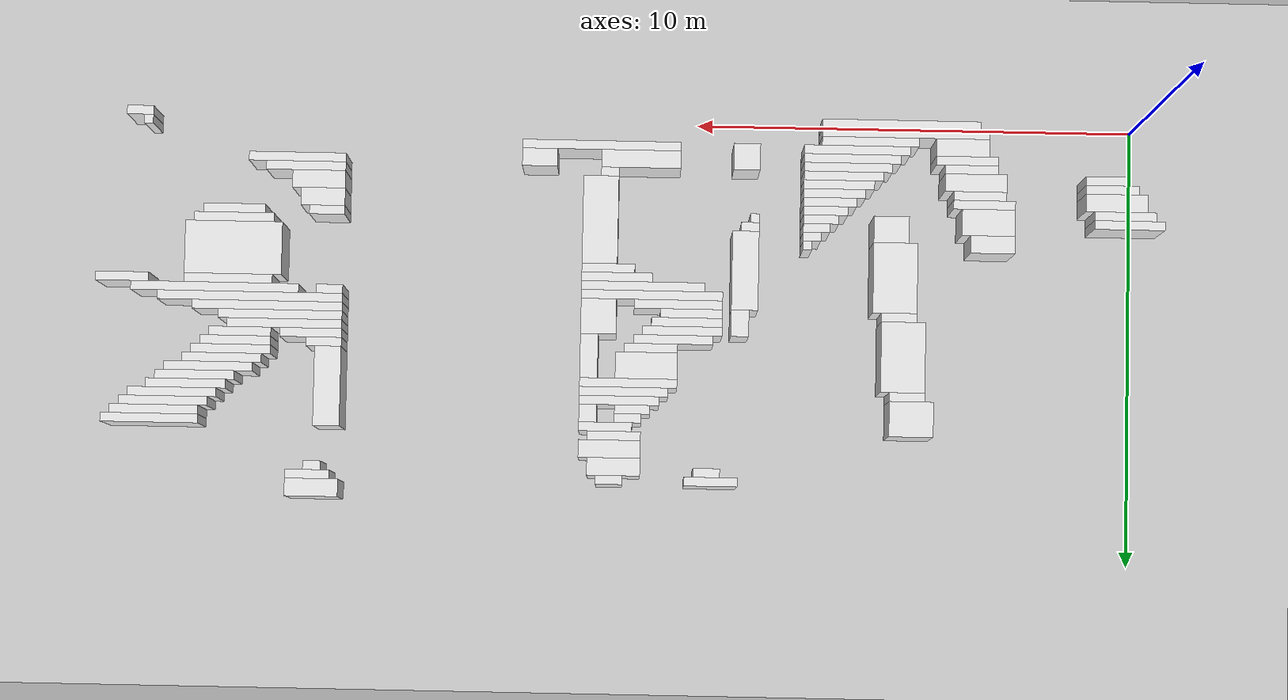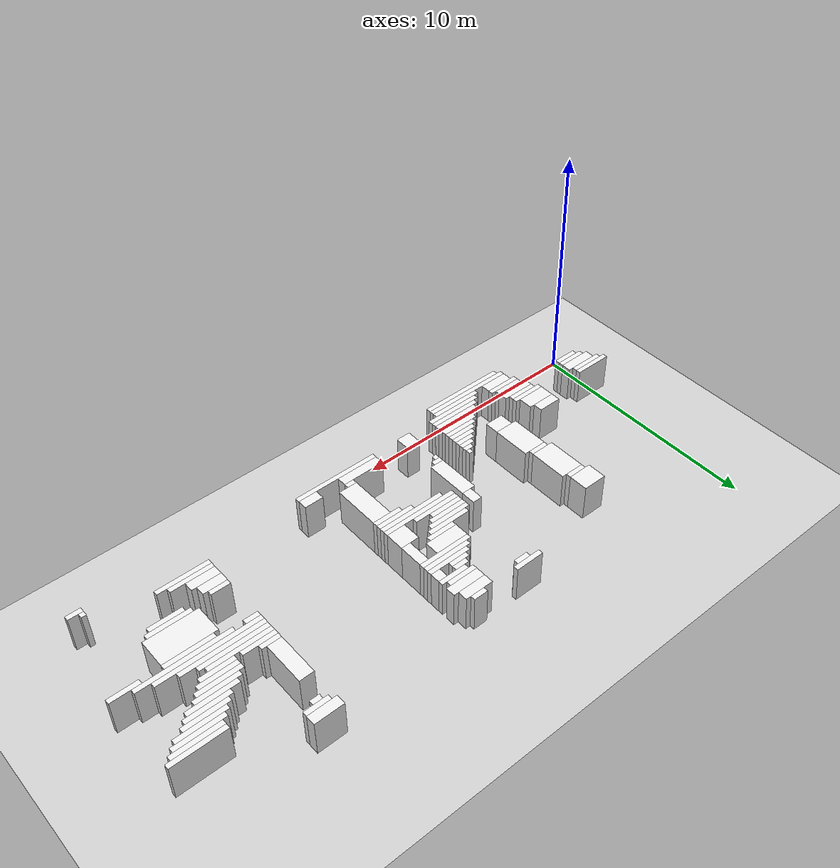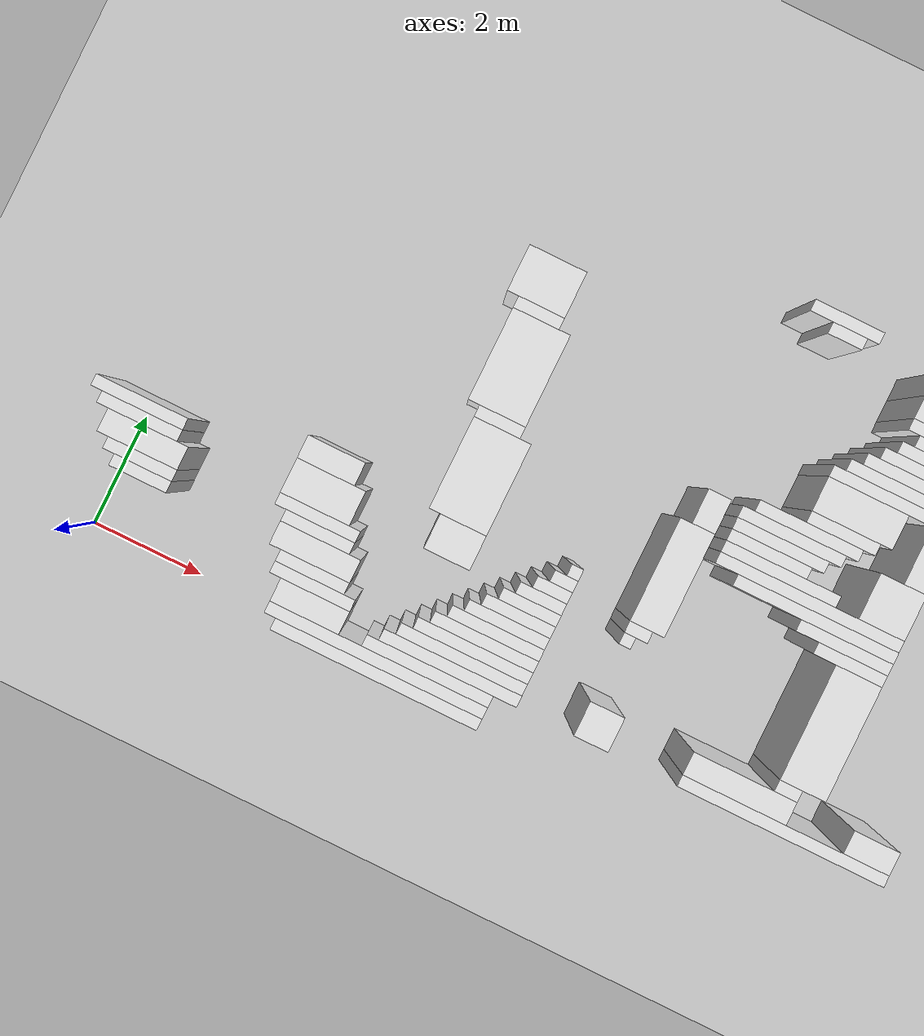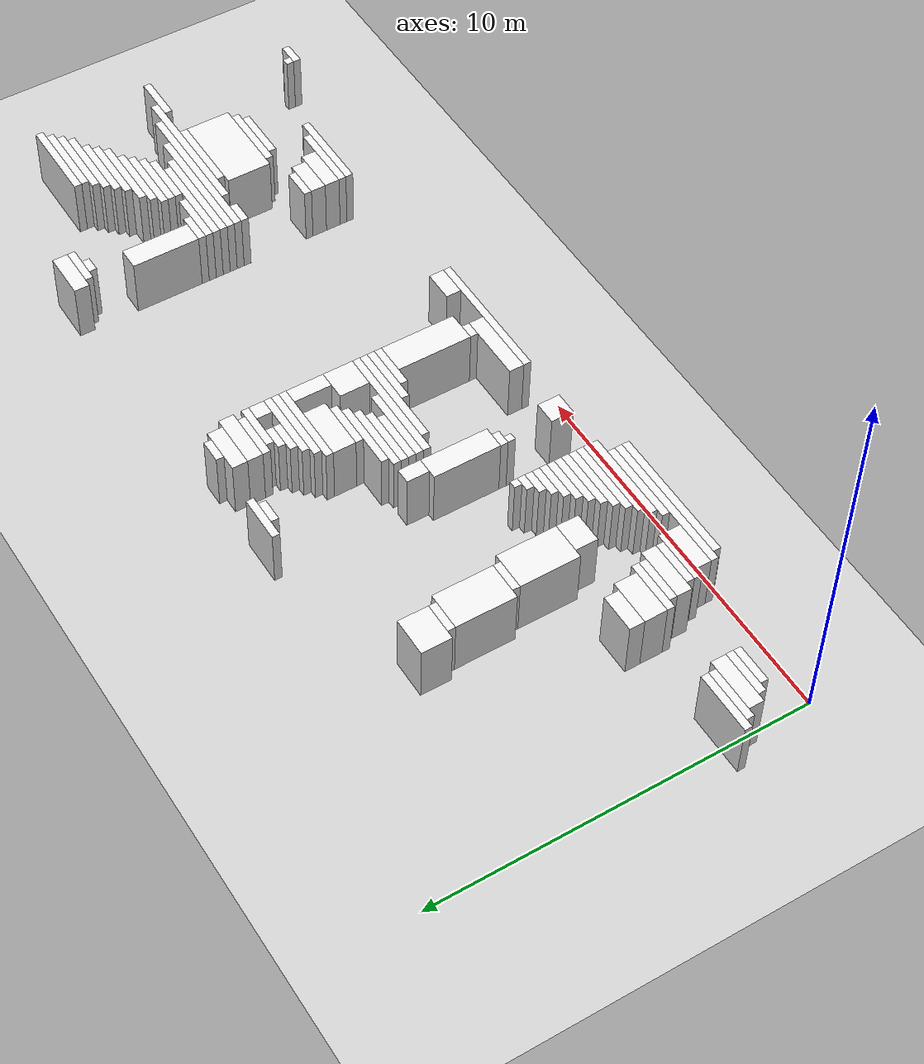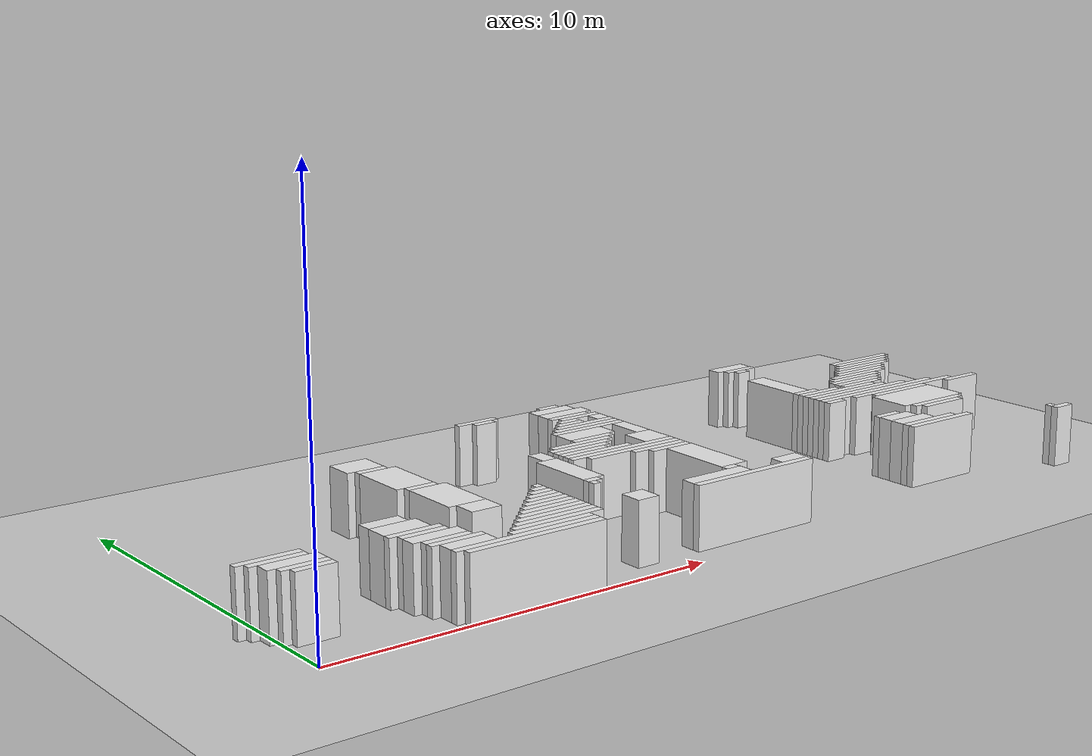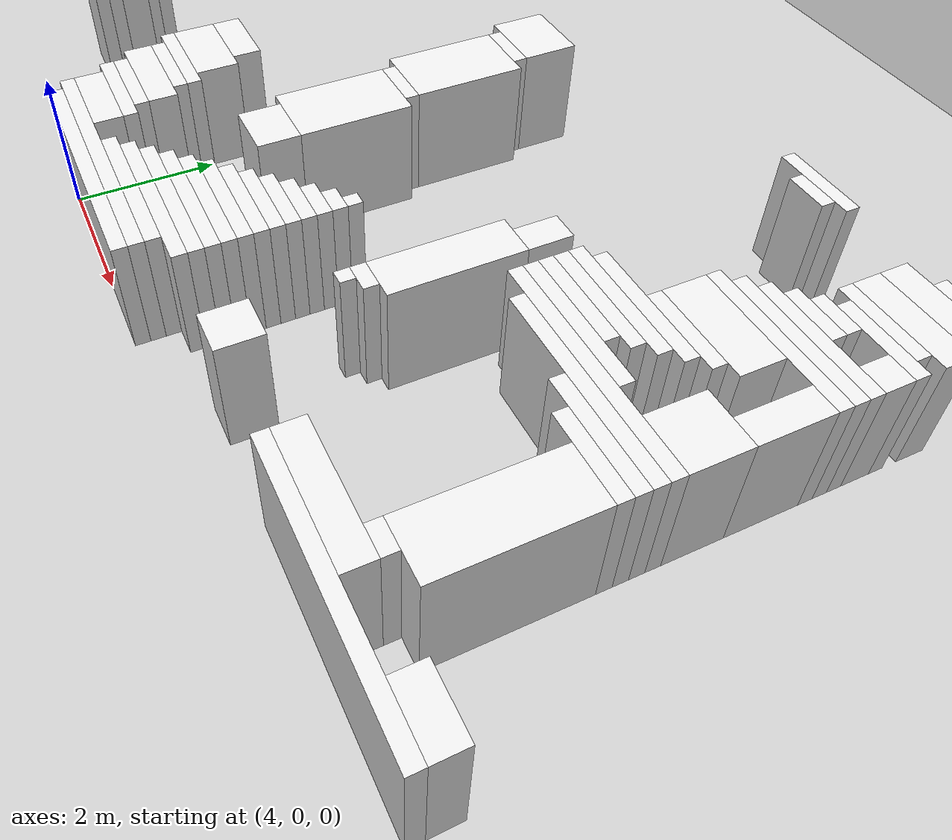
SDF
<sdf version="1.7">
 <world name="default">
  <model name="ground_plane">
   <static>1</static>
   <link name="link">
    <collision name="collision">
     <geometry><plane><normal>0 0 1</normal><size>120 120</size></plane></geometry>
    </collision>
    <visual name="visual">
     <geometry><plane><normal>0 0 1</normal><size>120 120</size></plane></geometry>
     <material>
      <script><uri>file://media/materials/scripts/gazebo.material</uri><name>Gazebo/Grey</name></script>
     </material>
    </visual>
   </link>
  </model>
  <model name="random_complex_02_model">
   <static>1</static>
   <link name="obs_1605">
    <pose>18.6000 8.6000 0.8000 0 0 0</pose>
    <collision name="obs_1605_col"><geometry><box><size>1.2000 0.4000 1.6000</size></box></geometry></collision>
    <visual name="obs_1605_vis">
     <geometry><box><size>1.2000 0.4000 1.6000</size></box></geometry>
     <material>
      <script><uri>file://media/materials/scripts/gazebo.material</uri><name>Gazebo/White</name></script>
     </material>
    </visual>
   </link>
   <link name="obs_1616">
    <pose>9.6000 8.3000 0.8000 0 0 0</pose>
    <collision name="obs_1616_col"><geometry><box><size>1.2000 0.2000 1.6000</size></box></geometry></collision>
    <visual name="obs_1616_vis">
     <geometry><box><size>1.2000 0.2000 1.6000</size></box></geometry>
     <material>
      <script><uri>file://media/materials/scripts/gazebo.material</uri><name>Gazebo/White</name></script>
     </material>
    </visual>
   </link>
   <link name="obs_1617">
    <pose>11.9000 8.3000 0.8000 0 0 0</pose>
    <collision name="obs_1617_col"><geometry><box><size>0.6000 0.2000 1.6000</size></box></geometry></collision>
    <visual name="obs_1617_vis">
     <geometry><box><size>0.6000 0.2000 1.6000</size></box></geometry>
     <material>
      <script><uri>file://media/materials/scripts/gazebo.material</uri><name>Gazebo/White</name></script>
     </material>
    </visual>
   </link>
   <link name="obs_1618">
    <pose>18.7000 8.3000 0.8000 0 0 0</pose>
    <collision name="obs_1618_col"><geometry><box><size>1.0000 0.2000 1.6000</size></box></geometry></collision>
    <visual name="obs_1618_vis">
     <geometry><box><size>1.0000 0.2000 1.6000</size></box></geometry>
     <material>
      <script><uri>file://media/materials/scripts/gazebo.material</uri><name>Gazebo/White</name></script>
     </material>
    </visual>
   </link>
   <link name="obs_1627">
    <pose>9.7000 8.1000 0.8000 0 0 0</pose>
    <collision name="obs_1627_col"><geometry><box><size>0.6000 0.2000 1.6000</size></box></geometry></collision>
    <visual name="obs_1627_vis">
     <geometry><box><size>0.6000 0.2000 1.6000</size></box></geometry>
     <material>
      <script><uri>file://media/materials/scripts/gazebo.material</uri><name>Gazebo/White</name></script>
     </material>
    </visual>
   </link>
   <link name="obs_1628">
    <pose>18.6000 8.1000 0.8000 0 0 0</pose>
    <collision name="obs_1628_col"><geometry><box><size>0.4000 0.2000 1.6000</size></box></geometry></collision>
    <visual name="obs_1628_vis">
     <geometry><box><size>0.4000 0.2000 1.6000</size></box></geometry>
     <material>
      <script><uri>file://media/materials/scripts/gazebo.material</uri><name>Gazebo/White</name></script>
     </material>
    </visual>
   </link>
   <link name="obs_1633">
    <pose>11.8000 8.0000 0.8000 0 0 0</pose>
    <collision name="obs_1633_col"><geometry><box><size>1.2000 0.4000 1.6000</size></box></geometry></collision>
    <visual name="obs_1633_vis">
     <geometry><box><size>1.2000 0.4000 1.6000</size></box></geometry>
     <material>
      <script><uri>file://media/materials/scripts/gazebo.material</uri><name>Gazebo/White</name></script>
     </material>
    </visual>
   </link>
   <link name="obs_1646">
    <pose>11.9000 7.6000 0.8000 0 0 0</pose>
    <collision name="obs_1646_col"><geometry><box><size>1.4000 0.4000 1.6000</size></box></geometry></collision>
    <visual name="obs_1646_vis">
     <geometry><box><size>1.4000 0.4000 1.6000</size></box></geometry>
     <material>
      <script><uri>file://media/materials/scripts/gazebo.material</uri><name>Gazebo/White</name></script>
     </material>
    </visual>
   </link>
   <link name="obs_1654">
    <pose>11.8000 7.3000 0.8000 0 0 0</pose>
    <collision name="obs_1654_col"><geometry><box><size>1.2000 0.2000 1.6000</size></box></geometry></collision>
    <visual name="obs_1654_vis">
     <geometry><box><size>1.2000 0.2000 1.6000</size></box></geometry>
     <material>
      <script><uri>file://media/materials/scripts/gazebo.material</uri><name>Gazebo/White</name></script>
     </material>
    </visual>
   </link>
   <link name="obs_1658">
    <pose>12.0000 7.1000 0.8000 0 0 0</pose>
    <collision name="obs_1658_col"><geometry><box><size>1.2000 0.2000 1.6000</size></box></geometry></collision>
    <visual name="obs_1658_vis">
     <geometry><box><size>1.2000 0.2000 1.6000</size></box></geometry>
     <material>
      <script><uri>file://media/materials/scripts/gazebo.material</uri><name>Gazebo/White</name></script>
     </material>
    </visual>
   </link>
   <link name="obs_1659">
    <pose>22.3000 7.1000 0.8000 0 0 0</pose>
    <collision name="obs_1659_col"><geometry><box><size>2.2000 0.2000 1.6000</size></box></geometry></collision>
    <visual name="obs_1659_vis">
     <geometry><box><size>2.2000 0.2000 1.6000</size></box></geometry>
     <material>
      <script><uri>file://media/materials/scripts/gazebo.material</uri><name>Gazebo/White</name></script>
     </material>
    </visual>
   </link>
   <link name="obs_1665">
    <pose>11.5000 6.9000 0.8000 0 0 0</pose>
    <collision name="obs_1665_col"><geometry><box><size>0.6000 0.2000 1.6000</size></box></geometry></collision>
    <visual name="obs_1665_vis">
     <geometry><box><size>0.6000 0.2000 1.6000</size></box></geometry>
     <material>
      <script><uri>file://media/materials/scripts/gazebo.material</uri><name>Gazebo/White</name></script>
     </material>
    </visual>
   </link>
   <link name="obs_1666">
    <pose>22.2000 6.9000 0.8000 0 0 0</pose>
    <collision name="obs_1666_col"><geometry><box><size>2.0000 0.2000 1.6000</size></box></geometry></collision>
    <visual name="obs_1666_vis">
     <geometry><box><size>2.0000 0.2000 1.6000</size></box></geometry>
     <material>
      <script><uri>file://media/materials/scripts/gazebo.material</uri><name>Gazebo/White</name></script>
     </material>
    </visual>
   </link>
   <link name="obs_1668">
    <pose>12.4000 6.8000 0.8000 0 0 0</pose>
    <collision name="obs_1668_col"><geometry><box><size>0.4000 0.4000 1.6000</size></box></geometry></collision>
    <visual name="obs_1668_vis">
     <geometry><box><size>0.4000 0.4000 1.6000</size></box></geometry>
     <material>
      <script><uri>file://media/materials/scripts/gazebo.material</uri><name>Gazebo/White</name></script>
     </material>
    </visual>
   </link>
   <link name="obs_1673">
    <pose>11.4000 6.7000 0.8000 0 0 0</pose>
    <collision name="obs_1673_col"><geometry><box><size>0.8000 0.2000 1.6000</size></box></geometry></collision>
    <visual name="obs_1673_vis">
     <geometry><box><size>0.8000 0.2000 1.6000</size></box></geometry>
     <material>
      <script><uri>file://media/materials/scripts/gazebo.material</uri><name>Gazebo/White</name></script>
     </material>
    </visual>
   </link>
   <link name="obs_1674">
    <pose>22.0000 6.7000 0.8000 0 0 0</pose>
    <collision name="obs_1674_col"><geometry><box><size>2.0000 0.2000 1.6000</size></box></geometry></collision>
    <visual name="obs_1674_vis">
     <geometry><box><size>2.0000 0.2000 1.6000</size></box></geometry>
     <material>
      <script><uri>file://media/materials/scripts/gazebo.material</uri><name>Gazebo/White</name></script>
     </material>
    </visual>
   </link>
   <link name="obs_1676">
    <pose>5.1000 6.8000 0.8000 0 0 0</pose>
    <collision name="obs_1676_col"><geometry><box><size>1.0000 0.8000 1.6000</size></box></geometry></collision>
    <visual name="obs_1676_vis">
     <geometry><box><size>1.0000 0.8000 1.6000</size></box></geometry>
     <material>
      <script><uri>file://media/materials/scripts/gazebo.material</uri><name>Gazebo/White</name></script>
     </material>
    </visual>
   </link>
   <link name="obs_1683">
    <pose>11.7000 6.5000 0.8000 0 0 0</pose>
    <collision name="obs_1683_col"><geometry><box><size>1.8000 0.2000 1.6000</size></box></geometry></collision>
    <visual name="obs_1683_vis">
     <geometry><box><size>1.8000 0.2000 1.6000</size></box></geometry>
     <material>
      <script><uri>file://media/materials/scripts/gazebo.material</uri><name>Gazebo/White</name></script>
     </material>
    </visual>
   </link>
   <link name="obs_1684">
    <pose>21.8000 6.5000 0.8000 0 0 0</pose>
    <collision name="obs_1684_col"><geometry><box><size>2.0000 0.2000 1.6000</size></box></geometry></collision>
    <visual name="obs_1684_vis">
     <geometry><box><size>2.0000 0.2000 1.6000</size></box></geometry>
     <material>
      <script><uri>file://media/materials/scripts/gazebo.material</uri><name>Gazebo/White</name></script>
     </material>
    </visual>
   </link>
   <link name="obs_1689">
    <pose>5.2000 6.3000 0.8000 0 0 0</pose>
    <collision name="obs_1689_col"><geometry><box><size>0.8000 0.2000 1.6000</size></box></geometry></collision>
    <visual name="obs_1689_vis">
     <geometry><box><size>0.8000 0.2000 1.6000</size></box></geometry>
     <material>
      <script><uri>file://media/materials/scripts/gazebo.material</uri><name>Gazebo/White</name></script>
     </material>
    </visual>
   </link>
   <link name="obs_1690">
    <pose>11.6000 6.3000 0.8000 0 0 0</pose>
    <collision name="obs_1690_col"><geometry><box><size>2.0000 0.2000 1.6000</size></box></geometry></collision>
    <visual name="obs_1690_vis">
     <geometry><box><size>2.0000 0.2000 1.6000</size></box></geometry>
     <material>
      <script><uri>file://media/materials/scripts/gazebo.material</uri><name>Gazebo/White</name></script>
     </material>
    </visual>
   </link>
   <link name="obs_1691">
    <pose>21.5000 6.3000 0.8000 0 0 0</pose>
    <collision name="obs_1691_col"><geometry><box><size>1.8000 0.2000 1.6000</size></box></geometry></collision>
    <visual name="obs_1691_vis">
     <geometry><box><size>1.8000 0.2000 1.6000</size></box></geometry>
     <material>
      <script><uri>file://media/materials/scripts/gazebo.material</uri><name>Gazebo/White</name></script>
     </material>
    </visual>
   </link>
   <link name="obs_1695">
    <pose>11.5000 6.1000 0.8000 0 0 0</pose>
    <collision name="obs_1695_col"><geometry><box><size>2.2000 0.2000 1.6000</size></box></geometry></collision>
    <visual name="obs_1695_vis">
     <geometry><box><size>2.2000 0.2000 1.6000</size></box></geometry>
     <material>
      <script><uri>file://media/materials/scripts/gazebo.material</uri><name>Gazebo/White</name></script>
     </material>
    </visual>
   </link>
   <link name="obs_1696">
    <pose>21.3000 6.1000 0.8000 0 0 0</pose>
    <collision name="obs_1696_col"><geometry><box><size>1.8000 0.2000 1.6000</size></box></geometry></collision>
    <visual name="obs_1696_vis">
     <geometry><box><size>1.8000 0.2000 1.6000</size></box></geometry>
     <material>
      <script><uri>file://media/materials/scripts/gazebo.material</uri><name>Gazebo/White</name></script>
     </material>
    </visual>
   </link>
   <link name="obs_1702">
    <pose>21.0000 5.9000 0.8000 0 0 0</pose>
    <collision name="obs_1702_col"><geometry><box><size>2.0000 0.2000 1.6000</size></box></geometry></collision>
    <visual name="obs_1702_vis">
     <geometry><box><size>2.0000 0.2000 1.6000</size></box></geometry>
     <material>
      <script><uri>file://media/materials/scripts/gazebo.material</uri><name>Gazebo/White</name></script>
     </material>
    </visual>
   </link>
   <link name="obs_1709">
    <pose>20.7000 5.7000 0.8000 0 0 0</pose>
    <collision name="obs_1709_col"><geometry><box><size>1.8000 0.2000 1.6000</size></box></geometry></collision>
    <visual name="obs_1709_vis">
     <geometry><box><size>1.8000 0.2000 1.6000</size></box></geometry>
     <material>
      <script><uri>file://media/materials/scripts/gazebo.material</uri><name>Gazebo/White</name></script>
     </material>
    </visual>
   </link>
   <link name="obs_1712">
    <pose>18.3000 6.3000 0.8000 0 0 0</pose>
    <collision name="obs_1712_col"><geometry><box><size>0.6000 1.8000 1.6000</size></box></geometry></collision>
    <visual name="obs_1712_vis">
     <geometry><box><size>0.6000 1.8000 1.6000</size></box></geometry>
     <material>
      <script><uri>file://media/materials/scripts/gazebo.material</uri><name>Gazebo/White</name></script>
     </material>
    </visual>
   </link>
   <link name="obs_1715">
    <pose>11.1000 5.7000 0.8000 0 0 0</pose>
    <collision name="obs_1715_col"><geometry><box><size>1.4000 0.6000 1.6000</size></box></geometry></collision>
    <visual name="obs_1715_vis">
     <geometry><box><size>1.4000 0.6000 1.6000</size></box></geometry>
     <material>
      <script><uri>file://media/materials/scripts/gazebo.material</uri><name>Gazebo/White</name></script>
     </material>
    </visual>
   </link>
   <link name="obs_1721">
    <pose>20.5000 5.5000 0.8000 0 0 0</pose>
    <collision name="obs_1721_col"><geometry><box><size>1.8000 0.2000 1.6000</size></box></geometry></collision>
    <visual name="obs_1721_vis">
     <geometry><box><size>1.8000 0.2000 1.6000</size></box></geometry>
     <material>
      <script><uri>file://media/materials/scripts/gazebo.material</uri><name>Gazebo/White</name></script>
     </material>
    </visual>
   </link>
   <link name="obs_1729">
    <pose>11.0000 5.3000 0.8000 0 0 0</pose>
    <collision name="obs_1729_col"><geometry><box><size>1.2000 0.2000 1.6000</size></box></geometry></collision>
    <visual name="obs_1729_vis">
     <geometry><box><size>1.2000 0.2000 1.6000</size></box></geometry>
     <material>
      <script><uri>file://media/materials/scripts/gazebo.material</uri><name>Gazebo/White</name></script>
     </material>
    </visual>
   </link>
   <link name="obs_1730">
    <pose>18.4000 5.3000 0.8000 0 0 0</pose>
    <collision name="obs_1730_col"><geometry><box><size>0.8000 0.2000 1.6000</size></box></geometry></collision>
    <visual name="obs_1730_vis">
     <geometry><box><size>0.8000 0.2000 1.6000</size></box></geometry>
     <material>
      <script><uri>file://media/materials/scripts/gazebo.material</uri><name>Gazebo/White</name></script>
     </material>
    </visual>
   </link>
   <link name="obs_1731">
    <pose>20.4000 5.3000 0.8000 0 0 0</pose>
    <collision name="obs_1731_col"><geometry><box><size>1.6000 0.2000 1.6000</size></box></geometry></collision>
    <visual name="obs_1731_vis">
     <geometry><box><size>1.6000 0.2000 1.6000</size></box></geometry>
     <material>
      <script><uri>file://media/materials/scripts/gazebo.material</uri><name>Gazebo/White</name></script>
     </material>
    </visual>
   </link>
   <link name="obs_1735">
    <pose>12.4000 5.5000 0.8000 0 0 0</pose>
    <collision name="obs_1735_col"><geometry><box><size>0.4000 1.0000 1.6000</size></box></geometry></collision>
    <visual name="obs_1735_vis">
     <geometry><box><size>0.4000 1.0000 1.6000</size></box></geometry>
     <material>
      <script><uri>file://media/materials/scripts/gazebo.material</uri><name>Gazebo/White</name></script>
     </material>
    </visual>
   </link>
   <link name="obs_1743">
    <pose>10.5000 5.1000 0.8000 0 0 0</pose>
    <collision name="obs_1743_col"><geometry><box><size>1.8000 0.2000 1.6000</size></box></geometry></collision>
    <visual name="obs_1743_vis">
     <geometry><box><size>1.8000 0.2000 1.6000</size></box></geometry>
     <material>
      <script><uri>file://media/materials/scripts/gazebo.material</uri><name>Gazebo/White</name></script>
     </material>
    </visual>
   </link>
   <link name="obs_1744">
    <pose>18.7000 5.1000 0.8000 0 0 0</pose>
    <collision name="obs_1744_col"><geometry><box><size>1.4000 0.2000 1.6000</size></box></geometry></collision>
    <visual name="obs_1744_vis">
     <geometry><box><size>1.4000 0.2000 1.6000</size></box></geometry>
     <material>
      <script><uri>file://media/materials/scripts/gazebo.material</uri><name>Gazebo/White</name></script>
     </material>
    </visual>
   </link>
   <link name="obs_1745">
    <pose>20.3000 5.1000 0.8000 0 0 0</pose>
    <collision name="obs_1745_col"><geometry><box><size>1.4000 0.2000 1.6000</size></box></geometry></collision>
    <visual name="obs_1745_vis">
     <geometry><box><size>1.4000 0.2000 1.6000</size></box></geometry>
     <material>
      <script><uri>file://media/materials/scripts/gazebo.material</uri><name>Gazebo/White</name></script>
     </material>
    </visual>
   </link>
   <link name="obs_1751">
    <pose>10.3000 4.9000 0.8000 0 0 0</pose>
    <collision name="obs_1751_col"><geometry><box><size>1.8000 0.2000 1.6000</size></box></geometry></collision>
    <visual name="obs_1751_vis">
     <geometry><box><size>1.8000 0.2000 1.6000</size></box></geometry>
     <material>
      <script><uri>file://media/materials/scripts/gazebo.material</uri><name>Gazebo/White</name></script>
     </material>
    </visual>
   </link>
   <link name="obs_1752">
    <pose>19.3000 4.9000 0.8000 0 0 0</pose>
    <collision name="obs_1752_col"><geometry><box><size>2.6000 0.2000 1.6000</size></box></geometry></collision>
    <visual name="obs_1752_vis">
     <geometry><box><size>2.6000 0.2000 1.6000</size></box></geometry>
     <material>
      <script><uri>file://media/materials/scripts/gazebo.material</uri><name>Gazebo/White</name></script>
     </material>
    </visual>
   </link>
   <link name="obs_1753">
    <pose>5.3000 5.4000 0.8000 0 0 0</pose>
    <collision name="obs_1753_col"><geometry><box><size>1.0000 1.6000 1.6000</size></box></geometry></collision>
    <visual name="obs_1753_vis">
     <geometry><box><size>1.0000 1.6000 1.6000</size></box></geometry>
     <material>
      <script><uri>file://media/materials/scripts/gazebo.material</uri><name>Gazebo/White</name></script>
     </material>
    </visual>
   </link>
   <link name="obs_1759">
    <pose>10.2000 4.7000 0.8000 0 0 0</pose>
    <collision name="obs_1759_col"><geometry><box><size>1.6000 0.2000 1.6000</size></box></geometry></collision>
    <visual name="obs_1759_vis">
     <geometry><box><size>1.6000 0.2000 1.6000</size></box></geometry>
     <material>
      <script><uri>file://media/materials/scripts/gazebo.material</uri><name>Gazebo/White</name></script>
     </material>
    </visual>
   </link>
   <link name="obs_1760">
    <pose>19.4000 4.7000 0.8000 0 0 0</pose>
    <collision name="obs_1760_col"><geometry><box><size>2.8000 0.2000 1.6000</size></box></geometry></collision>
    <visual name="obs_1760_vis">
     <geometry><box><size>2.8000 0.2000 1.6000</size></box></geometry>
     <material>
      <script><uri>file://media/materials/scripts/gazebo.material</uri><name>Gazebo/White</name></script>
     </material>
    </visual>
   </link>
   <link name="obs_1762">
    <pose>9.0000 4.7000 0.8000 0 0 0</pose>
    <collision name="obs_1762_col"><geometry><box><size>0.4000 0.6000 1.6000</size></box></geometry></collision>
    <visual name="obs_1762_vis">
     <geometry><box><size>0.4000 0.6000 1.6000</size></box></geometry>
     <material>
      <script><uri>file://media/materials/scripts/gazebo.material</uri><name>Gazebo/White</name></script>
     </material>
    </visual>
   </link>
   <link name="obs_1766">
    <pose>5.4000 4.5000 0.8000 0 0 0</pose>
    <collision name="obs_1766_col"><geometry><box><size>0.8000 0.2000 1.6000</size></box></geometry></collision>
    <visual name="obs_1766_vis">
     <geometry><box><size>0.8000 0.2000 1.6000</size></box></geometry>
     <material>
      <script><uri>file://media/materials/scripts/gazebo.material</uri><name>Gazebo/White</name></script>
     </material>
    </visual>
   </link>
   <link name="obs_1767">
    <pose>10.1000 4.5000 0.8000 0 0 0</pose>
    <collision name="obs_1767_col"><geometry><box><size>1.4000 0.2000 1.6000</size></box></geometry></collision>
    <visual name="obs_1767_vis">
     <geometry><box><size>1.4000 0.2000 1.6000</size></box></geometry>
     <material>
      <script><uri>file://media/materials/scripts/gazebo.material</uri><name>Gazebo/White</name></script>
     </material>
    </visual>
   </link>
   <link name="obs_1768">
    <pose>19.7000 4.5000 0.8000 0 0 0</pose>
    <collision name="obs_1768_col"><geometry><box><size>3.4000 0.2000 1.6000</size></box></geometry></collision>
    <visual name="obs_1768_vis">
     <geometry><box><size>3.4000 0.2000 1.6000</size></box></geometry>
     <material>
      <script><uri>file://media/materials/scripts/gazebo.material</uri><name>Gazebo/White</name></script>
     </material>
    </visual>
   </link>
   <link name="obs_1771">
    <pose>12.2000 4.6000 0.8000 0 0 0</pose>
    <collision name="obs_1771_col"><geometry><box><size>0.8000 0.8000 1.6000</size></box></geometry></collision>
    <visual name="obs_1771_vis">
     <geometry><box><size>0.8000 0.8000 1.6000</size></box></geometry>
     <material>
      <script><uri>file://media/materials/scripts/gazebo.material</uri><name>Gazebo/White</name></script>
     </material>
    </visual>
   </link>
   <link name="obs_1777">
    <pose>10.4000 4.3000 0.8000 0 0 0</pose>
    <collision name="obs_1777_col"><geometry><box><size>2.0000 0.2000 1.6000</size></box></geometry></collision>
    <visual name="obs_1777_vis">
     <geometry><box><size>2.0000 0.2000 1.6000</size></box></geometry>
     <material>
      <script><uri>file://media/materials/scripts/gazebo.material</uri><name>Gazebo/White</name></script>
     </material>
    </visual>
   </link>
   <link name="obs_1778">
    <pose>20.1000 4.3000 0.8000 0 0 0</pose>
    <collision name="obs_1778_col"><geometry><box><size>4.2000 0.2000 1.6000</size></box></geometry></collision>
    <visual name="obs_1778_vis">
     <geometry><box><size>4.2000 0.2000 1.6000</size></box></geometry>
     <material>
      <script><uri>file://media/materials/scripts/gazebo.material</uri><name>Gazebo/White</name></script>
     </material>
    </visual>
   </link>
   <link name="obs_1788">
    <pose>11.0000 4.1000 0.8000 0 0 0</pose>
    <collision name="obs_1788_col"><geometry><box><size>3.2000 0.2000 1.6000</size></box></geometry></collision>
    <visual name="obs_1788_vis">
     <geometry><box><size>3.2000 0.2000 1.6000</size></box></geometry>
     <material>
      <script><uri>file://media/materials/scripts/gazebo.material</uri><name>Gazebo/White</name></script>
     </material>
    </visual>
   </link>
   <link name="obs_1789">
    <pose>18.3000 4.1000 0.8000 0 0 0</pose>
    <collision name="obs_1789_col"><geometry><box><size>0.6000 0.2000 1.6000</size></box></geometry></collision>
    <visual name="obs_1789_vis">
     <geometry><box><size>0.6000 0.2000 1.6000</size></box></geometry>
     <material>
      <script><uri>file://media/materials/scripts/gazebo.material</uri><name>Gazebo/White</name></script>
     </material>
    </visual>
   </link>
   <link name="obs_1790">
    <pose>20.9000 4.1000 0.8000 0 0 0</pose>
    <collision name="obs_1790_col"><geometry><box><size>3.8000 0.2000 1.6000</size></box></geometry></collision>
    <visual name="obs_1790_vis">
     <geometry><box><size>3.8000 0.2000 1.6000</size></box></geometry>
     <material>
      <script><uri>file://media/materials/scripts/gazebo.material</uri><name>Gazebo/White</name></script>
     </material>
    </visual>
   </link>
   <link name="obs_1802">
    <pose>11.2000 3.9000 0.8000 0 0 0</pose>
    <collision name="obs_1802_col"><geometry><box><size>2.8000 0.2000 1.6000</size></box></geometry></collision>
    <visual name="obs_1802_vis">
     <geometry><box><size>2.8000 0.2000 1.6000</size></box></geometry>
     <material>
      <script><uri>file://media/materials/scripts/gazebo.material</uri><name>Gazebo/White</name></script>
     </material>
    </visual>
   </link>
   <link name="obs_1803">
    <pose>20.6000 3.9000 0.8000 0 0 0</pose>
    <collision name="obs_1803_col"><geometry><box><size>2.0000 0.2000 1.6000</size></box></geometry></collision>
    <visual name="obs_1803_vis">
     <geometry><box><size>2.0000 0.2000 1.6000</size></box></geometry>
     <material>
      <script><uri>file://media/materials/scripts/gazebo.material</uri><name>Gazebo/White</name></script>
     </material>
    </visual>
   </link>
   <link name="obs_1804">
    <pose>23.0000 3.9000 0.8000 0 0 0</pose>
    <collision name="obs_1804_col"><geometry><box><size>1.2000 0.2000 1.6000</size></box></geometry></collision>
    <visual name="obs_1804_vis">
     <geometry><box><size>1.2000 0.2000 1.6000</size></box></geometry>
     <material>
      <script><uri>file://media/materials/scripts/gazebo.material</uri><name>Gazebo/White</name></script>
     </material>
    </visual>
   </link>
   <link name="obs_1811">
    <pose>11.8000 3.7000 0.8000 0 0 0</pose>
    <collision name="obs_1811_col"><geometry><box><size>1.6000 0.2000 1.6000</size></box></geometry></collision>
    <visual name="obs_1811_vis">
     <geometry><box><size>1.6000 0.2000 1.6000</size></box></geometry>
     <material>
      <script><uri>file://media/materials/scripts/gazebo.material</uri><name>Gazebo/White</name></script>
     </material>
    </visual>
   </link>
   <link name="obs_1815">
    <pose>12.0000 3.5000 0.8000 0 0 0</pose>
    <collision name="obs_1815_col"><geometry><box><size>1.2000 0.2000 1.6000</size></box></geometry></collision>
    <visual name="obs_1815_vis">
     <geometry><box><size>1.2000 0.2000 1.6000</size></box></geometry>
     <material>
      <script><uri>file://media/materials/scripts/gazebo.material</uri><name>Gazebo/White</name></script>
     </material>
    </visual>
   </link>
   <link name="obs_1830">
    <pose>5.5000 3.6000 0.8000 0 0 0</pose>
    <collision name="obs_1830_col"><geometry><box><size>1.0000 1.6000 1.6000</size></box></geometry></collision>
    <visual name="obs_1830_vis">
     <geometry><box><size>1.0000 1.6000 1.6000</size></box></geometry>
     <material>
      <script><uri>file://media/materials/scripts/gazebo.material</uri><name>Gazebo/White</name></script>
     </material>
    </visual>
   </link>
   <link name="obs_1835">
    <pose>7.5000 2.9000 0.8000 0 0 0</pose>
    <collision name="obs_1835_col"><geometry><box><size>0.2000 0.2000 1.6000</size></box></geometry></collision>
    <visual name="obs_1835_vis">
     <geometry><box><size>0.2000 0.2000 1.6000</size></box></geometry>
     <material>
      <script><uri>file://media/materials/scripts/gazebo.material</uri><name>Gazebo/White</name></script>
     </material>
    </visual>
   </link>
   <link name="obs_1838">
    <pose>8.9000 3.5000 0.8000 0 0 0</pose>
    <collision name="obs_1838_col"><geometry><box><size>0.6000 1.8000 1.6000</size></box></geometry></collision>
    <visual name="obs_1838_vis">
     <geometry><box><size>0.6000 1.8000 1.6000</size></box></geometry>
     <material>
      <script><uri>file://media/materials/scripts/gazebo.material</uri><name>Gazebo/White</name></script>
     </material>
    </visual>
   </link>
   <link name="obs_1840">
    <pose>20.5000 3.2000 0.8000 0 0 0</pose>
    <collision name="obs_1840_col"><geometry><box><size>2.2000 1.2000 1.6000</size></box></geometry></collision>
    <visual name="obs_1840_vis">
     <geometry><box><size>2.2000 1.2000 1.6000</size></box></geometry>
     <material>
      <script><uri>file://media/materials/scripts/gazebo.material</uri><name>Gazebo/White</name></script>
     </material>
    </visual>
   </link>
   <link name="obs_1841">
    <pose>3.3000 2.8000 0.8000 0 0 0</pose>
    <collision name="obs_1841_col"><geometry><box><size>1.0000 0.4000 1.6000</size></box></geometry></collision>
    <visual name="obs_1841_vis">
     <geometry><box><size>1.0000 0.4000 1.6000</size></box></geometry>
     <material>
      <script><uri>file://media/materials/scripts/gazebo.material</uri><name>Gazebo/White</name></script>
     </material>
    </visual>
   </link>
   <link name="obs_1844">
    <pose>7.4000 2.7000 0.8000 0 0 0</pose>
    <collision name="obs_1844_col"><geometry><box><size>0.4000 0.2000 1.6000</size></box></geometry></collision>
    <visual name="obs_1844_vis">
     <geometry><box><size>0.4000 0.2000 1.6000</size></box></geometry>
     <material>
      <script><uri>file://media/materials/scripts/gazebo.material</uri><name>Gazebo/White</name></script>
     </material>
    </visual>
   </link>
   <link name="obs_1853">
    <pose>7.3000 2.5000 0.8000 0 0 0</pose>
    <collision name="obs_1853_col"><geometry><box><size>0.6000 0.2000 1.6000</size></box></geometry></collision>
    <visual name="obs_1853_vis">
     <geometry><box><size>0.6000 0.2000 1.6000</size></box></geometry>
     <material>
      <script><uri>file://media/materials/scripts/gazebo.material</uri><name>Gazebo/White</name></script>
     </material>
    </visual>
   </link>
   <link name="obs_1854">
    <pose>8.8000 2.5000 0.8000 0 0 0</pose>
    <collision name="obs_1854_col"><geometry><box><size>0.4000 0.2000 1.6000</size></box></geometry></collision>
    <visual name="obs_1854_vis">
     <geometry><box><size>0.4000 0.2000 1.6000</size></box></geometry>
     <material>
      <script><uri>file://media/materials/scripts/gazebo.material</uri><name>Gazebo/White</name></script>
     </material>
    </visual>
   </link>
   <link name="obs_1855">
    <pose>20.5000 2.5000 0.8000 0 0 0</pose>
    <collision name="obs_1855_col"><geometry><box><size>1.8000 0.2000 1.6000</size></box></geometry></collision>
    <visual name="obs_1855_vis">
     <geometry><box><size>1.8000 0.2000 1.6000</size></box></geometry>
     <material>
      <script><uri>file://media/materials/scripts/gazebo.material</uri><name>Gazebo/White</name></script>
     </material>
    </visual>
   </link>
   <link name="obs_1859">
    <pose>5.6000 2.5000 0.8000 0 0 0</pose>
    <collision name="obs_1859_col"><geometry><box><size>0.8000 0.6000 1.6000</size></box></geometry></collision>
    <visual name="obs_1859_vis">
     <geometry><box><size>0.8000 0.6000 1.6000</size></box></geometry>
     <material>
      <script><uri>file://media/materials/scripts/gazebo.material</uri><name>Gazebo/White</name></script>
     </material>
    </visual>
   </link>
   <link name="obs_1861">
    <pose>0.2000 2.3000 0.8000 0 0 0</pose>
    <collision name="obs_1861_col"><geometry><box><size>1.6000 0.2000 1.6000</size></box></geometry></collision>
    <visual name="obs_1861_vis">
     <geometry><box><size>1.6000 0.2000 1.6000</size></box></geometry>
     <material>
      <script><uri>file://media/materials/scripts/gazebo.material</uri><name>Gazebo/White</name></script>
     </material>
    </visual>
   </link>
   <link name="obs_1862">
    <pose>7.2000 2.3000 0.8000 0 0 0</pose>
    <collision name="obs_1862_col"><geometry><box><size>0.8000 0.2000 1.6000</size></box></geometry></collision>
    <visual name="obs_1862_vis">
     <geometry><box><size>0.8000 0.2000 1.6000</size></box></geometry>
     <material>
      <script><uri>file://media/materials/scripts/gazebo.material</uri><name>Gazebo/White</name></script>
     </material>
    </visual>
   </link>
   <link name="obs_1863">
    <pose>8.7000 2.3000 0.8000 0 0 0</pose>
    <collision name="obs_1863_col"><geometry><box><size>0.2000 0.2000 1.6000</size></box></geometry></collision>
    <visual name="obs_1863_vis">
     <geometry><box><size>0.2000 0.2000 1.6000</size></box></geometry>
     <material>
      <script><uri>file://media/materials/scripts/gazebo.material</uri><name>Gazebo/White</name></script>
     </material>
    </visual>
   </link>
   <link name="obs_1864">
    <pose>18.4000 2.3000 0.8000 0 0 0</pose>
    <collision name="obs_1864_col"><geometry><box><size>0.8000 0.2000 1.6000</size></box></geometry></collision>
    <visual name="obs_1864_vis">
     <geometry><box><size>0.8000 0.2000 1.6000</size></box></geometry>
     <material>
      <script><uri>file://media/materials/scripts/gazebo.material</uri><name>Gazebo/White</name></script>
     </material>
    </visual>
   </link>
   <link name="obs_1865">
    <pose>20.5000 2.3000 0.8000 0 0 0</pose>
    <collision name="obs_1865_col"><geometry><box><size>1.4000 0.2000 1.6000</size></box></geometry></collision>
    <visual name="obs_1865_vis">
     <geometry><box><size>1.4000 0.2000 1.6000</size></box></geometry>
     <material>
      <script><uri>file://media/materials/scripts/gazebo.material</uri><name>Gazebo/White</name></script>
     </material>
    </visual>
   </link>
   <link name="obs_1869">
    <pose>3.4000 2.3000 0.8000 0 0 0</pose>
    <collision name="obs_1869_col"><geometry><box><size>1.2000 0.6000 1.6000</size></box></geometry></collision>
    <visual name="obs_1869_vis">
     <geometry><box><size>1.2000 0.6000 1.6000</size></box></geometry>
     <material>
      <script><uri>file://media/materials/scripts/gazebo.material</uri><name>Gazebo/White</name></script>
     </material>
    </visual>
   </link>
   <link name="obs_1872">
    <pose>0.3000 2.1000 0.8000 0 0 0</pose>
    <collision name="obs_1872_col"><geometry><box><size>1.4000 0.2000 1.6000</size></box></geometry></collision>
    <visual name="obs_1872_vis">
     <geometry><box><size>1.4000 0.2000 1.6000</size></box></geometry>
     <material>
      <script><uri>file://media/materials/scripts/gazebo.material</uri><name>Gazebo/White</name></script>
     </material>
    </visual>
   </link>
   <link name="obs_1873">
    <pose>7.1000 2.1000 0.8000 0 0 0</pose>
    <collision name="obs_1873_col"><geometry><box><size>1.0000 0.2000 1.6000</size></box></geometry></collision>
    <visual name="obs_1873_vis">
     <geometry><box><size>1.0000 0.2000 1.6000</size></box></geometry>
     <material>
      <script><uri>file://media/materials/scripts/gazebo.material</uri><name>Gazebo/White</name></script>
     </material>
    </visual>
   </link>
   <link name="obs_1876">
    <pose>18.5000 2.0000 0.8000 0 0 0</pose>
    <collision name="obs_1876_col"><geometry><box><size>1.0000 0.4000 1.6000</size></box></geometry></collision>
    <visual name="obs_1876_vis">
     <geometry><box><size>1.0000 0.4000 1.6000</size></box></geometry>
     <material>
      <script><uri>file://media/materials/scripts/gazebo.material</uri><name>Gazebo/White</name></script>
     </material>
    </visual>
   </link>
   <link name="obs_1878">
    <pose>3.5000 1.9000 0.8000 0 0 0</pose>
    <collision name="obs_1878_col"><geometry><box><size>1.4000 0.2000 1.6000</size></box></geometry></collision>
    <visual name="obs_1878_vis">
     <geometry><box><size>1.4000 0.2000 1.6000</size></box></geometry>
     <material>
      <script><uri>file://media/materials/scripts/gazebo.material</uri><name>Gazebo/White</name></script>
     </material>
    </visual>
   </link>
   <link name="obs_1879">
    <pose>7.0000 1.9000 0.8000 0 0 0</pose>
    <collision name="obs_1879_col"><geometry><box><size>1.2000 0.2000 1.6000</size></box></geometry></collision>
    <visual name="obs_1879_vis">
     <geometry><box><size>1.2000 0.2000 1.6000</size></box></geometry>
     <material>
      <script><uri>file://media/materials/scripts/gazebo.material</uri><name>Gazebo/White</name></script>
     </material>
    </visual>
   </link>
   <link name="obs_1887">
    <pose>0.5000 1.8000 0.8000 0 0 0</pose>
    <collision name="obs_1887_col"><geometry><box><size>1.4000 0.4000 1.6000</size></box></geometry></collision>
    <visual name="obs_1887_vis">
     <geometry><box><size>1.4000 0.4000 1.6000</size></box></geometry>
     <material>
      <script><uri>file://media/materials/scripts/gazebo.material</uri><name>Gazebo/White</name></script>
     </material>
    </visual>
   </link>
   <link name="obs_1890">
    <pose>3.6000 1.7000 0.8000 0 0 0</pose>
    <collision name="obs_1890_col"><geometry><box><size>1.2000 0.2000 1.6000</size></box></geometry></collision>
    <visual name="obs_1890_vis">
     <geometry><box><size>1.2000 0.2000 1.6000</size></box></geometry>
     <material>
      <script><uri>file://media/materials/scripts/gazebo.material</uri><name>Gazebo/White</name></script>
     </material>
    </visual>
   </link>
   <link name="obs_1891">
    <pose>6.9000 1.7000 0.8000 0 0 0</pose>
    <collision name="obs_1891_col"><geometry><box><size>1.4000 0.2000 1.6000</size></box></geometry></collision>
    <visual name="obs_1891_vis">
     <geometry><box><size>1.4000 0.2000 1.6000</size></box></geometry>
     <material>
      <script><uri>file://media/materials/scripts/gazebo.material</uri><name>Gazebo/White</name></script>
     </material>
    </visual>
   </link>
   <link name="obs_1894">
    <pose>12.2000 2.4000 0.8000 0 0 0</pose>
    <collision name="obs_1894_col"><geometry><box><size>0.8000 2.0000 1.6000</size></box></geometry></collision>
    <visual name="obs_1894_vis">
     <geometry><box><size>0.8000 2.0000 1.6000</size></box></geometry>
     <material>
      <script><uri>file://media/materials/scripts/gazebo.material</uri><name>Gazebo/White</name></script>
     </material>
    </visual>
   </link>
   <link name="obs_1895">
    <pose>18.6000 1.6000 0.8000 0 0 0</pose>
    <collision name="obs_1895_col"><geometry><box><size>1.2000 0.4000 1.6000</size></box></geometry></collision>
    <visual name="obs_1895_vis">
     <geometry><box><size>1.2000 0.4000 1.6000</size></box></geometry>
     <material>
      <script><uri>file://media/materials/scripts/gazebo.material</uri><name>Gazebo/White</name></script>
     </material>
    </visual>
   </link>
   <link name="obs_1901">
    <pose>0.6000 1.5000 0.8000 0 0 0</pose>
    <collision name="obs_1901_col"><geometry><box><size>1.2000 0.2000 1.6000</size></box></geometry></collision>
    <visual name="obs_1901_vis">
     <geometry><box><size>1.2000 0.2000 1.6000</size></box></geometry>
     <material>
      <script><uri>file://media/materials/scripts/gazebo.material</uri><name>Gazebo/White</name></script>
     </material>
    </visual>
   </link>
   <link name="obs_1902">
    <pose>6.8000 1.5000 0.8000 0 0 0</pose>
    <collision name="obs_1902_col"><geometry><box><size>1.6000 0.2000 1.6000</size></box></geometry></collision>
    <visual name="obs_1902_vis">
     <geometry><box><size>1.6000 0.2000 1.6000</size></box></geometry>
     <material>
      <script><uri>file://media/materials/scripts/gazebo.material</uri><name>Gazebo/White</name></script>
     </material>
    </visual>
   </link>
   <link name="obs_1906">
    <pose>3.7000 1.4000 0.8000 0 0 0</pose>
    <collision name="obs_1906_col"><geometry><box><size>1.4000 0.4000 1.6000</size></box></geometry></collision>
    <visual name="obs_1906_vis">
     <geometry><box><size>1.4000 0.4000 1.6000</size></box></geometry>
     <material>
      <script><uri>file://media/materials/scripts/gazebo.material</uri><name>Gazebo/White</name></script>
     </material>
    </visual>
   </link>
   <link name="obs_1908">
    <pose>0.7000 1.3000 0.8000 0 0 0</pose>
    <collision name="obs_1908_col"><geometry><box><size>1.0000 0.2000 1.6000</size></box></geometry></collision>
    <visual name="obs_1908_vis">
     <geometry><box><size>1.0000 0.2000 1.6000</size></box></geometry>
     <material>
      <script><uri>file://media/materials/scripts/gazebo.material</uri><name>Gazebo/White</name></script>
     </material>
    </visual>
   </link>
   <link name="obs_1909">
    <pose>6.7000 1.3000 0.8000 0 0 0</pose>
    <collision name="obs_1909_col"><geometry><box><size>1.8000 0.2000 1.6000</size></box></geometry></collision>
    <visual name="obs_1909_vis">
     <geometry><box><size>1.8000 0.2000 1.6000</size></box></geometry>
     <material>
      <script><uri>file://media/materials/scripts/gazebo.material</uri><name>Gazebo/White</name></script>
     </material>
    </visual>
   </link>
   <link name="obs_1910">
    <pose>12.0000 1.3000 0.8000 0 0 0</pose>
    <collision name="obs_1910_col"><geometry><box><size>0.4000 0.2000 1.6000</size></box></geometry></collision>
    <visual name="obs_1910_vis">
     <geometry><box><size>0.4000 0.2000 1.6000</size></box></geometry>
     <material>
      <script><uri>file://media/materials/scripts/gazebo.material</uri><name>Gazebo/White</name></script>
     </material>
    </visual>
   </link>
   <link name="obs_1911">
    <pose>18.9000 1.3000 0.8000 0 0 0</pose>
    <collision name="obs_1911_col"><geometry><box><size>1.8000 0.2000 1.6000</size></box></geometry></collision>
    <visual name="obs_1911_vis">
     <geometry><box><size>1.8000 0.2000 1.6000</size></box></geometry>
     <material>
      <script><uri>file://media/materials/scripts/gazebo.material</uri><name>Gazebo/White</name></script>
     </material>
    </visual>
   </link>
   <link name="obs_1918">
    <pose>3.8000 1.1000 0.8000 0 0 0</pose>
    <collision name="obs_1918_col"><geometry><box><size>1.2000 0.2000 1.6000</size></box></geometry></collision>
    <visual name="obs_1918_vis">
     <geometry><box><size>1.2000 0.2000 1.6000</size></box></geometry>
     <material>
      <script><uri>file://media/materials/scripts/gazebo.material</uri><name>Gazebo/White</name></script>
     </material>
    </visual>
   </link>
   <link name="obs_1919">
    <pose>6.6000 1.1000 0.8000 0 0 0</pose>
    <collision name="obs_1919_col"><geometry><box><size>2.0000 0.2000 1.6000</size></box></geometry></collision>
    <visual name="obs_1919_vis">
     <geometry><box><size>2.0000 0.2000 1.6000</size></box></geometry>
     <material>
      <script><uri>file://media/materials/scripts/gazebo.material</uri><name>Gazebo/White</name></script>
     </material>
    </visual>
   </link>
   <link name="obs_1920">
    <pose>19.1000 1.1000 0.8000 0 0 0</pose>
    <collision name="obs_1920_col"><geometry><box><size>2.2000 0.2000 1.6000</size></box></geometry></collision>
    <visual name="obs_1920_vis">
     <geometry><box><size>2.2000 0.2000 1.6000</size></box></geometry>
     <material>
      <script><uri>file://media/materials/scripts/gazebo.material</uri><name>Gazebo/White</name></script>
     </material>
    </visual>
   </link>
   <link name="obs_1926">
    <pose>11.3000 1.0000 0.8000 0 0 0</pose>
    <collision name="obs_1926_col"><geometry><box><size>1.8000 0.4000 1.6000</size></box></geometry></collision>
    <visual name="obs_1926_vis">
     <geometry><box><size>1.8000 0.4000 1.6000</size></box></geometry>
     <material>
      <script><uri>file://media/materials/scripts/gazebo.material</uri><name>Gazebo/White</name></script>
     </material>
    </visual>
   </link>
   <link name="obs_1927">
    <pose>13.6000 1.0000 0.8000 0 0 0</pose>
    <collision name="obs_1927_col"><geometry><box><size>0.8000 0.4000 1.6000</size></box></geometry></collision>
    <visual name="obs_1927_vis">
     <geometry><box><size>0.8000 0.4000 1.6000</size></box></geometry>
     <material>
      <script><uri>file://media/materials/scripts/gazebo.material</uri><name>Gazebo/White</name></script>
     </material>
    </visual>
   </link>
   <link name="obs_1930">
    <pose>3.9000 0.9000 0.8000 0 0 0</pose>
    <collision name="obs_1930_col"><geometry><box><size>1.4000 0.2000 1.6000</size></box></geometry></collision>
    <visual name="obs_1930_vis">
     <geometry><box><size>1.4000 0.2000 1.6000</size></box></geometry>
     <material>
      <script><uri>file://media/materials/scripts/gazebo.material</uri><name>Gazebo/White</name></script>
     </material>
    </visual>
   </link>
   <link name="obs_1931">
    <pose>6.5000 0.9000 0.8000 0 0 0</pose>
    <collision name="obs_1931_col"><geometry><box><size>2.2000 0.2000 1.6000</size></box></geometry></collision>
    <visual name="obs_1931_vis">
     <geometry><box><size>2.2000 0.2000 1.6000</size></box></geometry>
     <material>
      <script><uri>file://media/materials/scripts/gazebo.material</uri><name>Gazebo/White</name></script>
     </material>
    </visual>
   </link>
   <link name="obs_1935">
    <pose>8.9000 0.9000 0.8000 0 0 0</pose>
    <collision name="obs_1935_col"><geometry><box><size>0.6000 0.6000 1.6000</size></box></geometry></collision>
    <visual name="obs_1935_vis">
     <geometry><box><size>0.6000 0.6000 1.6000</size></box></geometry>
     <material>
      <script><uri>file://media/materials/scripts/gazebo.material</uri><name>Gazebo/White</name></script>
     </material>
    </visual>
   </link>
   <link name="obs_1940">
    <pose>6.4000 0.7000 0.8000 0 0 0</pose>
    <collision name="obs_1940_col"><geometry><box><size>2.4000 0.2000 1.6000</size></box></geometry></collision>
    <visual name="obs_1940_vis">
     <geometry><box><size>2.4000 0.2000 1.6000</size></box></geometry>
     <material>
      <script><uri>file://media/materials/scripts/gazebo.material</uri><name>Gazebo/White</name></script>
     </material>
    </visual>
   </link>
   <link name="obs_1941">
    <pose>12.2000 0.7000 0.8000 0 0 0</pose>
    <collision name="obs_1941_col"><geometry><box><size>3.6000 0.2000 1.6000</size></box></geometry></collision>
    <visual name="obs_1941_vis">
     <geometry><box><size>3.6000 0.2000 1.6000</size></box></geometry>
     <material>
      <script><uri>file://media/materials/scripts/gazebo.material</uri><name>Gazebo/White</name></script>
     </material>
    </visual>
   </link>
   <link name="obs_1947">
    <pose>4.0000 0.6000 0.8000 0 0 0</pose>
    <collision name="obs_1947_col"><geometry><box><size>1.2000 0.4000 1.6000</size></box></geometry></collision>
    <visual name="obs_1947_vis">
     <geometry><box><size>1.2000 0.4000 1.6000</size></box></geometry>
     <material>
      <script><uri>file://media/materials/scripts/gazebo.material</uri><name>Gazebo/White</name></script>
     </material>
    </visual>
   </link>
   <link name="obs_1950">
    <pose>6.1000 0.5000 0.8000 0 0 0</pose>
    <collision name="obs_1950_col"><geometry><box><size>2.2000 0.2000 1.6000</size></box></geometry></collision>
    <visual name="obs_1950_vis">
     <geometry><box><size>2.2000 0.2000 1.6000</size></box></geometry>
     <material>
      <script><uri>file://media/materials/scripts/gazebo.material</uri><name>Gazebo/White</name></script>
     </material>
    </visual>
   </link>
   <link name="obs_1956">
    <pose>5.3000 0.3000 0.8000 0 0 0</pose>
    <collision name="obs_1956_col"><geometry><box><size>3.8000 0.2000 1.6000</size></box></geometry></collision>
    <visual name="obs_1956_vis">
     <geometry><box><size>3.8000 0.2000 1.6000</size></box></geometry>
     <material>
      <script><uri>file://media/materials/scripts/gazebo.material</uri><name>Gazebo/White</name></script>
     </material>
    </visual>
   </link>
   <link name="obs_1957">
    <pose>22.5000 0.3000 0.8000 0 0 0</pose>
    <collision name="obs_1957_col"><geometry><box><size>0.2000 0.2000 1.6000</size></box></geometry></collision>
    <visual name="obs_1957_vis">
     <geometry><box><size>0.2000 0.2000 1.6000</size></box></geometry>
     <material>
      <script><uri>file://media/materials/scripts/gazebo.material</uri><name>Gazebo/White</name></script>
     </material>
    </visual>
   </link>
   <link name="obs_1965">
    <pose>5.4000 0.1000 0.8000 0 0 0</pose>
    <collision name="obs_1965_col"><geometry><box><size>3.6000 0.2000 1.6000</size></box></geometry></collision>
    <visual name="obs_1965_vis">
     <geometry><box><size>3.6000 0.2000 1.6000</size></box></geometry>
     <material>
      <script><uri>file://media/materials/scripts/gazebo.material</uri><name>Gazebo/White</name></script>
     </material>
    </visual>
   </link>
   <link name="obs_1966">
    <pose>22.7000 0.1000 0.8000 0 0 0</pose>
    <collision name="obs_1966_col"><geometry><box><size>0.6000 0.2000 1.6000</size></box></geometry></collision>
    <visual name="obs_1966_vis">
     <geometry><box><size>0.6000 0.2000 1.6000</size></box></geometry>
     <material>
      <script><uri>file://media/materials/scripts/gazebo.material</uri><name>Gazebo/White</name></script>
     </material>
    </visual>
   </link>
  </model>
 </world>
</sdf>
